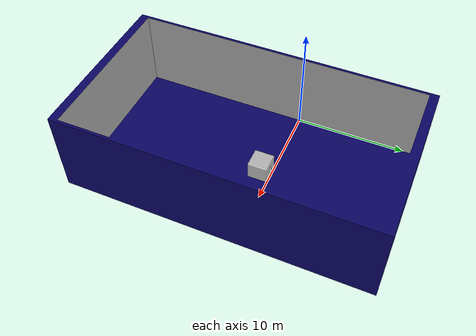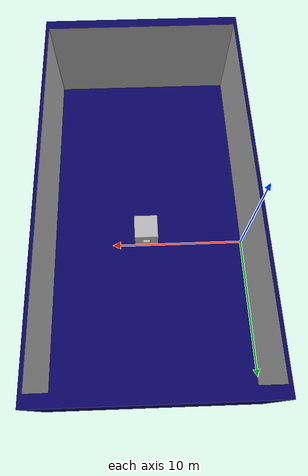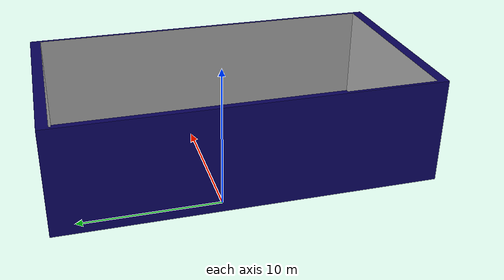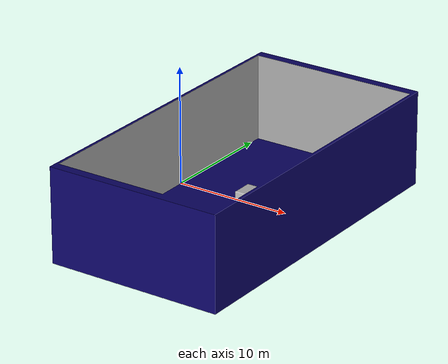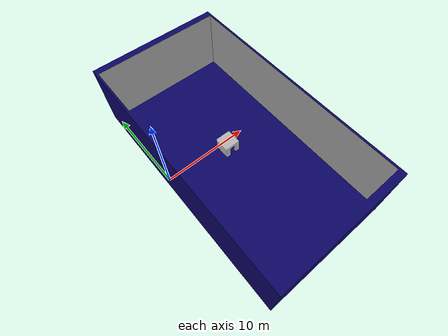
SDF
<sdf version="1.4">
 <world name="default">
  <include><uri>model://walls</uri><pose>0 0 -.61 1.57 0 1.57</pose></include>
  <model name="Bunker"><include><uri>model://bunker</uri><pose>6.5 0 0 0 0 0</pose></include></model>
  <model name="Lwall1"><include><uri>model://Lwall</uri><pose>4.5 -8 0 1.57 0 3.14</pose></include></model>
  <model name="Lwall2"><include><uri>model://Lwall</uri><pose>11.5 -6 0 1.57 0 4.71</pose></include></model>
  <include><uri>model://sun</uri></include>
 </world>
</sdf>

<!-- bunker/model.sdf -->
<sdf version="1.6">
	<model name="Bunker">
      <static>true</static>
      <link name="body">
        <collision name = 'collision'>
          <geometry>
            <mesh>
              <uri>model://bunker/bunker.dae</uri>
              <scale>.3048 .3048 .3048</scale>
            </mesh>
          </geometry>
        </collision>
        <visual name="visual">
          <geometry>
            <mesh>
            	<uri>model://bunker/bunker.dae</uri>
            	<scale>.3048 .3048 .3048</scale>
            </mesh>
          </geometry>
        </visual>
      </link>
    </model>
</sdf>

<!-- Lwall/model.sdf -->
<sdf version="1.6">
	<model name="Lwall">
      <static>true</static>
      <link name="body">
        <collision name="collision">
          <geometry>
            <mesh>
            	<uri>model://Lwall/LWall.dae</uri>
            	<scale>.3048 .3048 .3048</scale>
            </mesh>
          </geometry>
        </collision>
        <visual name="visual">
          <geometry>
            <mesh>
            	<uri>model://Lwall/LWall.dae</uri>
            	<scale>.3048 .3048 .3048</scale>
            </mesh>
          </geometry>
        </visual>
      </link>
    </model>
</sdf>

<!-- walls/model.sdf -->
<sdf version="1.6">
	<model name="Arena">
      <static>true</static>
      <link name="body">
        <collision name = 'collision'>
          <geometry>
            <mesh>
              <uri>model://walls/Floor_Blue.dae</uri>
            </mesh>
          </geometry>
        </collision>
        <visual name="visual">
          <geometry>
            <mesh>
            	<uri>model://walls/Floor_Blue.dae</uri>
            	<scale>1 1 1</scale>
            </mesh>
          </geometry>
        </visual>
      </link>
    </model>
</sdf>
